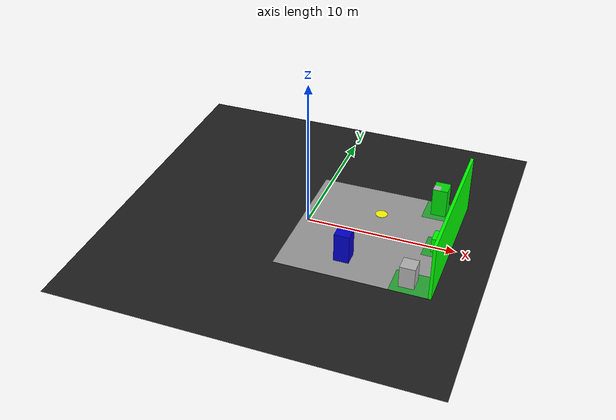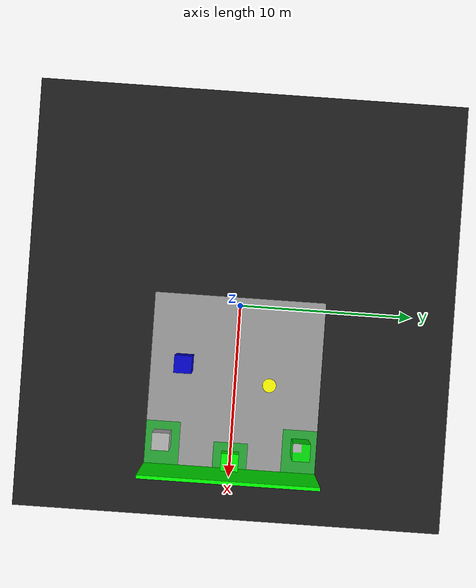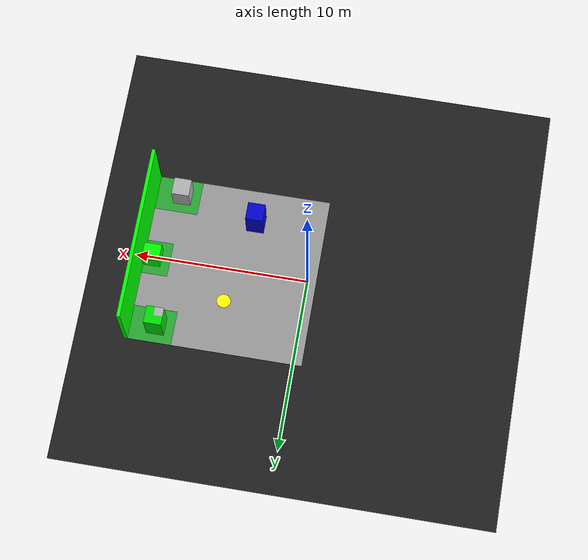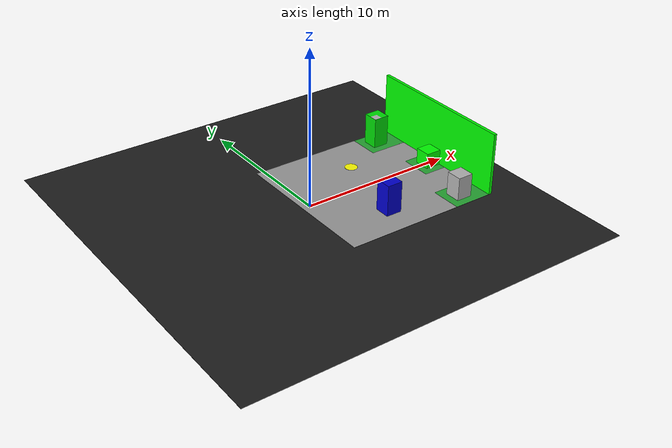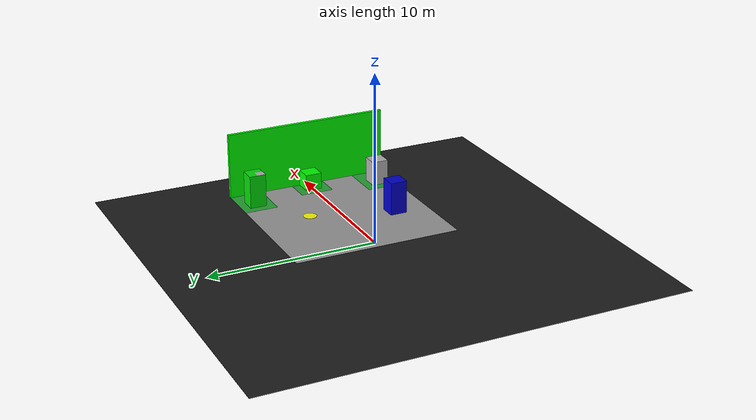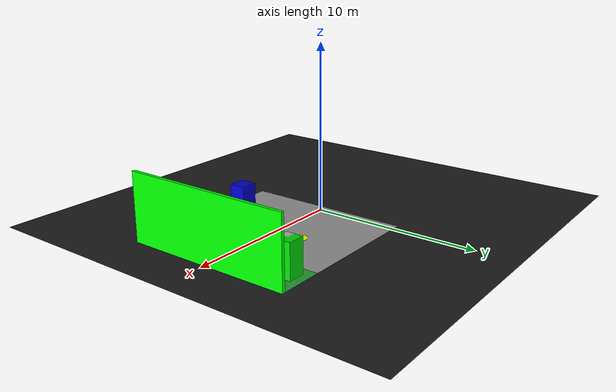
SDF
<sdf version="1.5">
 <world name="default">
  <physics type="ode">
   <ode>
    <solver><type>quick</type><iters>100</iters><sor>1.0</sor></solver>
    <constraints>
     <cfm>0.0</cfm>
     <erp>0.9</erp>
     <contact_max_correcting_vel>0.1</contact_max_correcting_vel>
     <contact_surface_layer>0.0</contact_surface_layer>
    </constraints>
   </ode>
   <real_time_update_rate>1000</real_time_update_rate>
   <max_step_size>0.0010</max_step_size>
  </physics>
  <scene>
   <sky><clouds><speed>10</speed></clouds></sky>
   <ambient>0.4 0.4 0.4 1</ambient>
   <background>0.25 0.25 0.25 1</background>
  </scene>
  <model name="ground_plane">
   <static>true</static>
   <link name="link">
    <collision name="collision">
     <geometry><plane><normal>0 0 1</normal><size>5000 5000</size></plane></geometry>
     <surface><friction><ode><mu>1</mu><mu2>1</mu2></ode></friction></surface>
    </collision>
    <visual name="visual">
     <pose>4.5 0 -0.0005 0 -0 0</pose>
     <geometry><box><size>10 10 0.01</size></box></geometry>
     <material>
      <lighting>1</lighting>
      <script><uri>file://media/materials/scripts/gazebo.material</uri><name>Gazebo/Grey</name></script>
     </material>
    </visual>
    <visual name="visual2">
     <pose>8.25 4 0 0 -0 0</pose>
     <geometry><box><size>2.5 2 0.01</size></box></geometry>
     <material>
      <lighting>1</lighting>
      <script><uri>file://media/materials/scripts/gazebo.material</uri><name>Gazebo/Green</name></script>
     </material>
    </visual>
    <visual name="visual3">
     <pose>8.25 -4 0 0 -0 0</pose>
     <geometry><box><size>2.5 2 0.01</size></box></geometry>
     <material>
      <lighting>1</lighting>
      <script><uri>file://media/materials/scripts/gazebo.material</uri><name>Gazebo/Green</name></script>
     </material>
    </visual>
    <visual name="visual4">
     <pose>8.75 0 0 0 -0 0</pose>
     <geometry><box><size>1.5 2 0.01</size></box></geometry>
     <material>
      <lighting>1</lighting>
      <script><uri>file://media/materials/scripts/gazebo.material</uri><name>Gazebo/Green</name></script>
     </material>
    </visual>
    <visual name="visual5">
     <pose>0 0 -0.05 0 -0 0</pose>
     <geometry><box><size>25 25 0.01</size></box></geometry>
     <material>
      <lighting>1</lighting>
      <script><uri>file://media/materials/scripts/gazebo.material</uri><name>Gazebo/Black</name></script>
     </material>
    </visual>
   </link>
  </model>
  <include><name>sun</name><uri>model://sun</uri></include>
  <light name="user_directional_light" type="directional">
   <pose>-5 -3 6 0 -1.2 0</pose>
   <diffuse>0.5 0.5 0.5 1</diffuse>
   <specular>0.1 0.1 0.1 1</specular>
   <direction>0.1 0.1 -0.9</direction>
   <attenuation>
    <range>20</range>
    <constant>0.5</constant>
    <linear>0.01</linear>
    <quadratic>0.001</quadratic>
   </attenuation>
  </light>
  <light name="user_directional_light2" type="directional">
   <pose>-5 3 6 0 -1.2 0</pose>
   <diffuse>0.5 0.5 0.5 1</diffuse>
   <specular>0.1 0.1 0.1 1</specular>
   <direction>0.1 0.1 -0.9</direction>
   <attenuation>
    <range>20</range>
    <constant>0.5</constant>
    <linear>0.01</linear>
    <quadratic>0.001</quadratic>
   </attenuation>
  </light>
  <model name="wall">
   <include><uri>model://wall</uri></include>
   <pose>9.6 0 2 0 -0 0</pose>
   <static>1</static>
  </model>
  <model name="gedung 2m">
   <include><uri>model://gedung2m</uri></include>
   <pose>8 4 1 0 -0 3.14159</pose>
   <static>1</static>
  </model>
  <model name="gedung 1m">
   <include><uri>model://gedung1m</uri></include>
   <pose>9 0 0.5 0 -0 0</pose>
   <static>1</static>
  </model>
  <model name="gedung 1,5m">
   <include><uri>model://gedung1,5m</uri></include>
   <pose>8 -4 0.75 0 -0 3.14159</pose>
   <static>1</static>
  </model>
  <model name="obstacle">
   <include><uri>model://obstacle</uri></include>
   <pose>3.5 -3 1 0 -0 0</pose>
   <static>1</static>
  </model>
  <model name="home">
   <include><uri>model://home</uri></include>
   <pose>0 0 0.0025 0 -0 0</pose>
   <static>1</static>
  </model>
  <model name="elp"><include><uri>model://elp</uri></include><pose>4.5 2 0.25 0 -0 0</pose></model>
 </world>
</sdf>

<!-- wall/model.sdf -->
<sdf version='1.7'>
  <model name='wall'>
    <link name='link_0'>
      <inertial>
        <mass>1</mass>
        <inertia>
          <ixx>0.166667</ixx>
          <ixy>0</ixy>
          <ixz>0</ixz>
          <iyy>0.166667</iyy>
          <iyz>0</iyz>
          <izz>0.166667</izz>
        </inertia>
        <pose>0 0 0 0 -0 0</pose>
      </inertial>
      <pose>0 0 0 0 -0 0</pose>
      <gravity>1</gravity>
      <visual name='visual'>
        <pose>0 0 0 0 -0 0</pose>
        <geometry>
          <box>
            <size>0.2 10 4</size>
          </box>
        </geometry>
        <material>
          <lighting>1</lighting>
          <script>
            <uri>file://media/materials/scripts/gazebo.material</uri>
            <name>Gazebo/Grey</name>
          </script>
          <shader type='pixel'>
            <normal_map>__default__</normal_map>
          </shader>
          <ambient>0 1 0 1</ambient>
          <diffuse>0.7 0.7 0.7 1</diffuse>
          <specular>0.01 0.01 0.01 1</specular>
          <emissive>0 0 0 1</emissive>
        </material>
        <transparency>0</transparency>
        <cast_shadows>1</cast_shadows>
      </visual>
      <collision name='collision'>
        <laser_retro>0</laser_retro>
        <max_contacts>10</max_contacts>
        <pose>0 0 0 0 -0 0</pose>
        <geometry>
          <box>
            <size>0.2 10 4</size>
          </box>
        </geometry>
      </collision>
    </link>
    <static>1</static>
    <allow_auto_disable>1</allow_auto_disable>
  </model>
</sdf>

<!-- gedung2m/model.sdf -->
<sdf version='1.7'>
  <model name='gedung 2m'>
    <link name='link_0'>
      <inertial>
        <mass>1</mass>
        <inertia>
          <ixx>0.166667</ixx>
          <ixy>0</ixy>
          <ixz>0</ixz>
          <iyy>0.166667</iyy>
          <iyz>0</iyz>
          <izz>0.166667</izz>
        </inertia>
        <pose>0 0 0 0 -0 0</pose>
      </inertial>
      <pose>0 0 0 0 -0 0</pose>
      <gravity>1</gravity>
      <visual name='visual'>
        <pose>0 0 0 0 -0 0</pose>
        <material>
          <lighting>1</lighting>
        </material>
        <geometry>
          <mesh>
            <uri>model://gedung2m/meshes/gedung2m.dae</uri>
          </mesh>
        </geometry>
        <transparency>0</transparency>
        <cast_shadows>1</cast_shadows>
      </visual>
      <collision name='collision'>
        <laser_retro>0</laser_retro>
        <max_contacts>10</max_contacts>
        <pose>0 0 0 0 -0 0</pose>
        <geometry>
          <mesh>
            <uri>model://gedung2m/meshes/gedung2m.dae</uri>
          </mesh>
        </geometry>
      </collision>
    </link>
    <static>1</static>
    <allow_auto_disable>1</allow_auto_disable>
  </model>
</sdf>

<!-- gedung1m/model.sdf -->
<sdf version='1.7'>
  <model name='gedung 1m'>
    <link name='link_0'>
      <inertial>
        <mass>1</mass>
        <inertia>
          <ixx>0.166667</ixx>
          <ixy>0</ixy>
          <ixz>0</ixz>
          <iyy>0.166667</iyy>
          <iyz>0</iyz>
          <izz>0.166667</izz>
        </inertia>
        <pose>0 0 0 0 -0 0</pose>
      </inertial>
      <pose>0 0 0 0 -0 0</pose>
      <gravity>1</gravity>
      <visual name='visual'>
        <pose>0 0 0 0 -0 0</pose>
        <geometry>
          <box>
            <size>1 1 1</size>
          </box>
        </geometry>
        <material>
          <lighting>1</lighting>
          <script>
            <uri>file://media/materials/scripts/gazebo.material</uri>
            <name>Gazebo/Grey</name>
          </script>
          <shader type='pixel'>
            <normal_map>__default__</normal_map>
          </shader>
          <ambient>0 1 0 1</ambient>
          <diffuse>0.7 0.7 0.7 1</diffuse>
          <specular>0.01 0.01 0.01 1</specular>
          <emissive>0 0 0 1</emissive>
        </material>
        <transparency>0</transparency>
        <cast_shadows>1</cast_shadows>
      </visual>
      <collision name='collision'>
        <laser_retro>0</laser_retro>
        <max_contacts>10</max_contacts>
        <pose>0 0 0 0 -0 0</pose>
        <geometry>
          <box>
            <size>1 1 1</size>
          </box>
        </geometry>
      </collision>
    </link>
    <static>1</static>
    <allow_auto_disable>1</allow_auto_disable>
  </model>
</sdf>

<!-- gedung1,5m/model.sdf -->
<sdf version='1.7'>
  <model name='gedung 1,5m'>
    <link name='link_0'>
      <inertial>
        <mass>1</mass>
        <inertia>
          <ixx>0.166667</ixx>
          <ixy>0</ixy>
          <ixz>0</ixz>
          <iyy>0.166667</iyy>
          <iyz>0</iyz>
          <izz>0.166667</izz>
        </inertia>
        <pose>0 0 0 0 -0 0</pose>
      </inertial>
      <pose>0 0 0 0 -0 0</pose>
      <gravity>1</gravity>
      <visual name='visual'>
        <pose>0 0 0 0 -0 0</pose>
        <material>
          <lighting>1</lighting>
        </material>
        <geometry>
          <mesh>
            <uri>model://gedung1,5m/meshes/gedung1,5m.dae</uri>
          </mesh>
        </geometry>
        <transparency>0</transparency>
        <cast_shadows>1</cast_shadows>
      </visual>
      <collision name='collision'>
        <laser_retro>0</laser_retro>
        <max_contacts>10</max_contacts>
        <pose>0 0 0 0 -0 0</pose>
        <geometry>
          <mesh>
            <uri>model://gedung1,5m/meshes/gedung1,5m.dae</uri>
          </mesh>
        </geometry>
      </collision>
    </link>
    <static>1</static>
    <allow_auto_disable>1</allow_auto_disable>
  </model>
</sdf>

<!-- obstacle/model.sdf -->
<sdf version='1.7'>
  <model name='wall'>
    <link name='link'>
      <inertial>
        <mass>1</mass>
        <inertia>
          <ixx>0.166667</ixx>
          <ixy>0</ixy>
          <ixz>0</ixz>
          <iyy>0.166667</iyy>
          <iyz>0</iyz>
          <izz>0.166667</izz>
        </inertia>
        <pose>0 0 0 0 -0 0</pose>
      </inertial>
      <pose>0 0 0 0 -0 0</pose>
      <gravity>1</gravity>
      <visual name='visual'>
        <pose>0 0 0 0 -0 0</pose>
        <geometry>
          <box>
            <size>1 1 2</size>
          </box>
        </geometry>
        <material>
          <lighting>1</lighting>
          <script>
            <uri>file://media/materials/scripts/gazebo.material</uri>
            <name>Gazebo/Grey</name>
          </script>
          <shader type='pixel'>
            <normal_map>__default__</normal_map>
          </shader>
          <ambient>0 0 0.8 1</ambient>
          <diffuse>0.7 0.7 0.7 1</diffuse>
          <specular>0.01 0.01 0.01 1</specular>
          <emissive>0 0 0 1</emissive>
        </material>
        <transparency>0</transparency>
        <cast_shadows>1</cast_shadows>
      </visual>
      <collision name='collision'>
        <laser_retro>0</laser_retro>
        <max_contacts>10</max_contacts>
        <pose>0 0 0 0 -0 0</pose>
        <geometry>
          <box>
            <size>1 1 2</size>
          </box>
        </geometry>
      </collision>
    </link>
    <static>1</static>
    <allow_auto_disable>1</allow_auto_disable>
  </model>
</sdf>

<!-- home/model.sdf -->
<sdf version='1.7'>
  <model name='home'>
    <link name='link_0'>
      <inertial>
        <mass>1</mass>
        <inertia>
          <ixx>0.166667</ixx>
          <ixy>0</ixy>
          <ixz>0</ixz>
          <iyy>0.166667</iyy>
          <iyz>0</iyz>
          <izz>0.166667</izz>
        </inertia>
        <pose>0 0 0 0 -0 0</pose>
      </inertial>
      <pose>0 0 0 0 -0 0</pose>
      <gravity>1</gravity>
      <visual name='visual'>
        <pose>0 0 0 0 -0 0</pose>
        <geometry>
          <box>
            <size>1 1 0.0005</size>
          </box>
        </geometry>
        <material>
          <lighting>1</lighting>
          <script>
            <uri>file://media/materials/scripts/gazebo.material</uri>
            <name>Gazebo/Grey</name>
          </script>
          <shader type='pixel'>
            <normal_map>__default__</normal_map>
          </shader>
          <ambient>1 1 1 1</ambient>
          <diffuse>0.7 0.7 0.7 1</diffuse>
          <specular>0.01 0.01 0.01 1</specular>
          <emissive>0 0 0 1</emissive>
        </material>
        <transparency>0</transparency>
        <cast_shadows>1</cast_shadows>
      </visual>
      <collision name='collision'>
        <laser_retro>0</laser_retro>
        <max_contacts>10</max_contacts>
        <pose>0 0 0 0 -0 0</pose>
        <geometry>
          <box>
            <size>1 1 0.0005</size>
          </box>
        </geometry>
      </collision>
    </link>
    <static>0</static>
    <allow_auto_disable>1</allow_auto_disable>
  </model>
</sdf>

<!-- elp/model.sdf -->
<sdf version='1.7'>
  <model name='elp'>
    <link name='link_0'>
      <inertial>
        <mass>0.1</mass>
        <inertia>
          <ixx>0.166667</ixx>
          <ixy>0</ixy>
          <ixz>0</ixz>
          <iyy>0.166667</iyy>
          <iyz>0</iyz>
          <izz>0.166667</izz>
        </inertia>
        <pose>0 0 0 0 -0 0</pose>
      </inertial>
      <pose>0 0 0 0 -0 0</pose>
      <gravity>1</gravity>

      <visual name='visual'>
        <pose>0 0 0 0 -0 0</pose>
        <geometry>
          <cylinder>
            <radius>0.4</radius>
            <length>0.01</length>
          </cylinder>
        </geometry>
        <material>
          <lighting>1</lighting>
          <script>
            <uri>file://media/materials/scripts/gazebo.material</uri>
            <name>Gazebo/Grey</name>
          </script>
          <shader type='pixel'>
            <normal_map>__default__</normal_map>
          </shader>
          <ambient>1 1 0 1</ambient>
          <diffuse>0.7 0.7 0.7 1</diffuse>
          <specular>0.01 0.01 0.01 1</specular>
          <emissive>0 0 0 1</emissive>
        </material>
        <transparency>0</transparency>
        <cast_shadows>1</cast_shadows>
      </visual>
      <collision name='collision'>
        <max_contacts>10</max_contacts>
        <pose>0 0 0 0 -0 0</pose>
        <geometry>
          <cylinder>
            <radius>0.4</radius>
            <length>0.01</length>
          </cylinder>
        </geometry>
      </collision>
    </link>
    <allow_auto_disable>1</allow_auto_disable>
    <static>0</static>
  </model>
</sdf>
